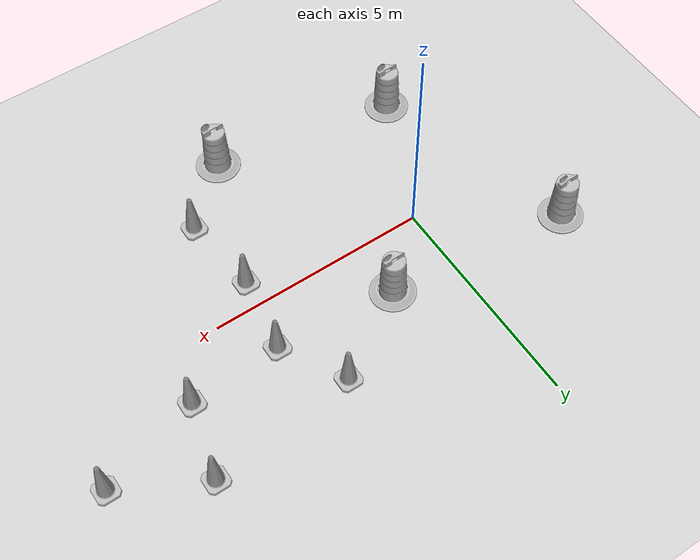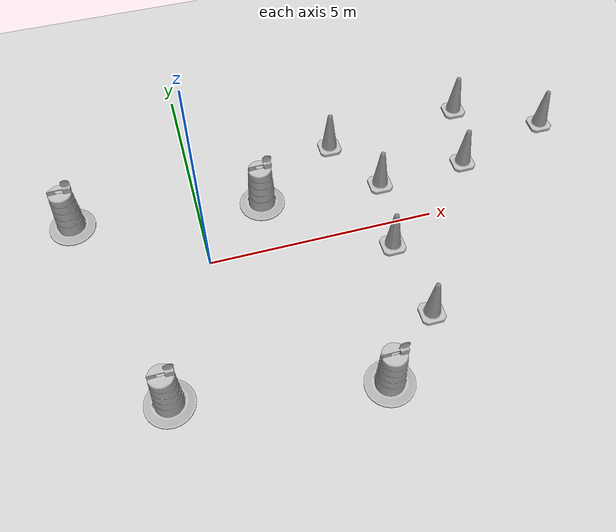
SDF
<sdf version="1.7">
 <world name="default">
  <light name="sun" type="directional">
   <pose>0 0 10 0 -0 0</pose>
   <diffuse>0.8 0.8 0.8 1</diffuse>
   <specular>0.2 0.2 0.2 1</specular>
   <attenuation>
    <range>1000</range>
    <constant>0.9</constant>
    <linear>0.01</linear>
    <quadratic>0.001</quadratic>
   </attenuation>
   <direction>-0.5 0.1 -0.9</direction>
   <spot><inner_angle>0</inner_angle><outer_angle>0</outer_angle><falloff>0</falloff></spot>
  </light>
  <model name="ground_plane">
   <static>1</static>
   <link name="link">
    <collision name="collision">
     <geometry><plane><normal>0 0 1</normal><size>100 100</size></plane></geometry>
     <surface>
      <contact><collide_bitmask>65535</collide_bitmask></contact>
      <friction><ode><mu>100</mu><mu2>50</mu2></ode></friction>
     </surface>
    </collision>
    <visual name="visual">
     <cast_shadows>0</cast_shadows>
     <geometry><plane><normal>0 0 1</normal><size>100 100</size></plane></geometry>
     <material>
      <script><uri>file://media/materials/scripts/gazebo.material</uri><name>Gazebo/Grey</name></script>
     </material>
    </visual>
   </link>
  </model>
  <gravity>0 0 -9.8</gravity>
  <magnetic_field>6e-06 2.3e-05 -4.2e-05</magnetic_field>
  <atmosphere type="adiabatic"/>
  <physics type="ode">
   <max_step_size>0.001</max_step_size>
   <real_time_factor>1</real_time_factor>
   <real_time_update_rate>1000</real_time_update_rate>
  </physics>
  <scene><ambient>0.4 0.4 0.4 1</ambient><background>0.7 0.7 0.7 1</background><shadows>1</shadows></scene>
  <audio><device>default</device></audio>
  <spherical_coordinates>
   <surface_model>EARTH_WGS84</surface_model>
   <latitude_deg>0</latitude_deg>
   <longitude_deg>0</longitude_deg>
   <elevation>0</elevation>
   <heading_deg>0</heading_deg>
  </spherical_coordinates>
  <model name="Construction Barrel">
   <link name="link">
    <inertial>
     <pose>0 0 0.4 0 -0 0</pose>
     <mass>500</mass>
     <inertia><ixx>51.2096</ixx><iyy>51.2096</iyy><izz>25</izz><ixy>0</ixy><ixz>0</ixz><iyz>0</iyz></inertia>
    </inertial>
    <collision name="collision">
     <geometry><mesh><uri>model://construction_barrel/meshes/construction_barrel.dae</uri></mesh></geometry>
    </collision>
    <visual name="visual">
     <geometry><mesh><uri>model://construction_barrel/meshes/construction_barrel.dae</uri></mesh></geometry>
    </visual>
   </link>
   <pose>1.45658 1.30668 -2e-06 0 7e-06 -2.1e-05</pose>
  </model>
  <model name="Construction Barrel_0">
   <link name="link">
    <inertial>
     <pose>0 0 0.4 0 -0 0</pose>
     <mass>500</mass>
     <inertia><ixx>51.2096</ixx><iyy>51.2096</iyy><izz>25</izz><ixy>0</ixy><ixz>0</ixz><iyz>0</iyz></inertia>
    </inertial>
    <collision name="collision">
     <geometry><mesh><uri>model://construction_barrel/meshes/construction_barrel.dae</uri></mesh></geometry>
    </collision>
    <visual name="visual">
     <geometry><mesh><uri>model://construction_barrel/meshes/construction_barrel.dae</uri></mesh></geometry>
    </visual>
   </link>
   <pose>-2.74933 1.75732 -2e-06 0 7e-06 -2e-05</pose>
  </model>
  <model name="Construction Barrel_1">
   <link name="link">
    <inertial>
     <pose>0 0 0.4 0 -0 0</pose>
     <mass>500</mass>
     <inertia><ixx>51.2096</ixx><iyy>51.2096</iyy><izz>25</izz><ixy>0</ixy><ixz>0</ixz><iyz>0</iyz></inertia>
    </inertial>
    <collision name="collision">
     <geometry><mesh><uri>model://construction_barrel/meshes/construction_barrel.dae</uri></mesh></geometry>
    </collision>
    <visual name="visual">
     <geometry><mesh><uri>model://construction_barrel/meshes/construction_barrel.dae</uri></mesh></geometry>
    </visual>
   </link>
   <pose>-1.3588 -2.97425 0 0 -0 -1.9e-05</pose>
  </model>
  <model name="Construction Barrel_2">
   <link name="link">
    <inertial>
     <pose>0 0 0.4 0 -0 0</pose>
     <mass>500</mass>
     <inertia><ixx>51.2096</ixx><iyy>51.2096</iyy><izz>25</izz><ixy>0</ixy><ixz>0</ixz><iyz>0</iyz></inertia>
    </inertial>
    <collision name="collision">
     <geometry><mesh><uri>model://construction_barrel/meshes/construction_barrel.dae</uri></mesh></geometry>
    </collision>
    <visual name="visual">
     <geometry><mesh><uri>model://construction_barrel/meshes/construction_barrel.dae</uri></mesh></geometry>
    </visual>
   </link>
   <pose>2.80067 -3.68351 0 1e-06 1e-06 -1.8e-05</pose>
  </model>
  <model name="Construction Cone">
   <link name="link">
    <collision name="collision">
     <geometry>
      <mesh><scale>10 10 10</scale><uri>model://construction_cone/meshes/construction_cone.dae</uri></mesh>
     </geometry>
    </collision>
    <visual name="visual">
     <geometry>
      <mesh><scale>10 10 10</scale><uri>model://construction_cone/meshes/construction_cone.dae</uri></mesh>
     </geometry>
    </visual>
    <inertial>
     <inertia><ixx>1</ixx><ixy>0</ixy><ixz>0</ixz><iyy>1</iyy><iyz>0</iyz><izz>1</izz></inertia>
     <mass>1</mass>
    </inertial>
   </link>
   <pose>3.39506 2.51754 -0 0 -0 0</pose>
  </model>
  <model name="Construction Cone_0">
   <link name="link">
    <collision name="collision">
     <geometry>
      <mesh><scale>10 10 10</scale><uri>model://construction_cone/meshes/construction_cone.dae</uri></mesh>
     </geometry>
    </collision>
    <visual name="visual">
     <geometry>
      <mesh><scale>10 10 10</scale><uri>model://construction_cone/meshes/construction_cone.dae</uri></mesh>
     </geometry>
    </visual>
    <inertial>
     <inertia><ixx>1</ixx><ixy>0</ixy><ixz>0</ixz><iyy>1</iyy><iyz>0</iyz><izz>1</izz></inertia>
     <mass>1</mass>
    </inertial>
   </link>
   <pose>4.20036 1.10413 0 -0 -0 -0</pose>
  </model>
  <model name="Construction Cone_1">
   <link name="link">
    <collision name="collision">
     <geometry>
      <mesh><scale>10 10 10</scale><uri>model://construction_cone/meshes/construction_cone.dae</uri></mesh>
     </geometry>
    </collision>
    <visual name="visual">
     <geometry>
      <mesh><scale>10 10 10</scale><uri>model://construction_cone/meshes/construction_cone.dae</uri></mesh>
     </geometry>
    </visual>
    <inertial>
     <inertia><ixx>1</ixx><ixy>0</ixy><ixz>0</ixz><iyy>1</iyy><iyz>0</iyz><izz>1</izz></inertia>
     <mass>1</mass>
    </inertial>
   </link>
   <pose>3.92147 -0.607279 0 -0 -0 -0</pose>
  </model>
  <model name="Construction Cone_2">
   <link name="link">
    <collision name="collision">
     <geometry>
      <mesh><scale>10 10 10</scale><uri>model://construction_cone/meshes/construction_cone.dae</uri></mesh>
     </geometry>
    </collision>
    <visual name="visual">
     <geometry>
      <mesh><scale>10 10 10</scale><uri>model://construction_cone/meshes/construction_cone.dae</uri></mesh>
     </geometry>
    </visual>
    <inertial>
     <inertia><ixx>1</ixx><ixy>0</ixy><ixz>0</ixz><iyy>1</iyy><iyz>0</iyz><izz>1</izz></inertia>
     <mass>1</mass>
    </inertial>
   </link>
   <pose>6.71138 2.90039 -0 0 -0 0</pose>
  </model>
  <model name="Construction Cone_3">
   <link name="link">
    <collision name="collision">
     <geometry>
      <mesh><scale>10 10 10</scale><uri>model://construction_cone/meshes/construction_cone.dae</uri></mesh>
     </geometry>
    </collision>
    <visual name="visual">
     <geometry>
      <mesh><scale>10 10 10</scale><uri>model://construction_cone/meshes/construction_cone.dae</uri></mesh>
     </geometry>
    </visual>
    <inertial>
     <inertia><ixx>1</ixx><ixy>0</ixy><ixz>0</ixz><iyy>1</iyy><iyz>0</iyz><izz>1</izz></inertia>
     <mass>1</mass>
    </inertial>
   </link>
   <pose>6.28223 1.22446 -0 0 -0 0</pose>
  </model>
  <model name="Construction Cone_4">
   <link name="link">
    <collision name="collision">
     <geometry>
      <mesh><scale>10 10 10</scale><uri>model://construction_cone/meshes/construction_cone.dae</uri></mesh>
     </geometry>
    </collision>
    <visual name="visual">
     <geometry>
      <mesh><scale>10 10 10</scale><uri>model://construction_cone/meshes/construction_cone.dae</uri></mesh>
     </geometry>
    </visual>
    <inertial>
     <inertia><ixx>1</ixx><ixy>0</ixy><ixz>0</ixz><iyy>1</iyy><iyz>0</iyz><izz>1</izz></inertia>
     <mass>1</mass>
    </inertial>
   </link>
   <pose>8.56284 1.90721 -0 0 -0 0</pose>
  </model>
  <model name="Construction Cone_5">
   <link name="link">
    <collision name="collision">
     <geometry>
      <mesh><scale>10 10 10</scale><uri>model://construction_cone/meshes/construction_cone.dae</uri></mesh>
     </geometry>
    </collision>
    <visual name="visual">
     <geometry>
      <mesh><scale>10 10 10</scale><uri>model://construction_cone/meshes/construction_cone.dae</uri></mesh>
     </geometry>
    </visual>
    <inertial>
     <inertia><ixx>1</ixx><ixy>0</ixy><ixz>0</ixz><iyy>1</iyy><iyz>0</iyz><izz>1</izz></inertia>
     <mass>1</mass>
    </inertial>
   </link>
   <pose>4.13449 -2.43762 -0 0 -0 0</pose>
  </model>
 </world>
</sdf>
